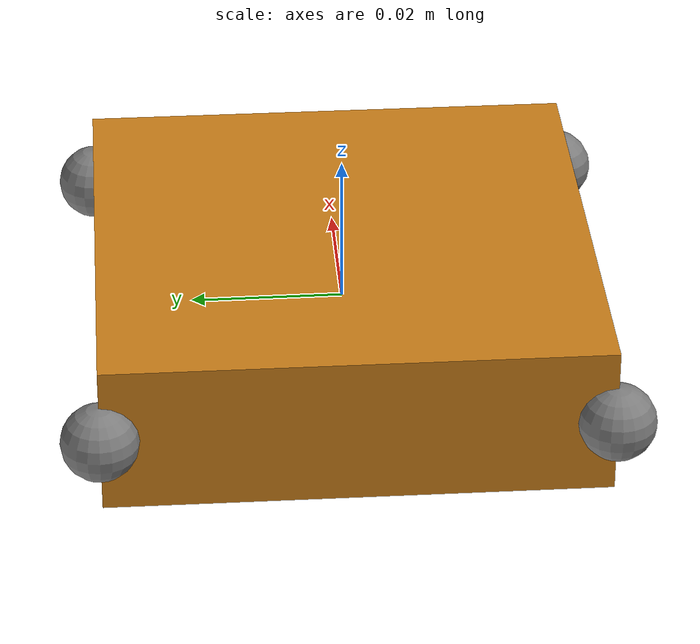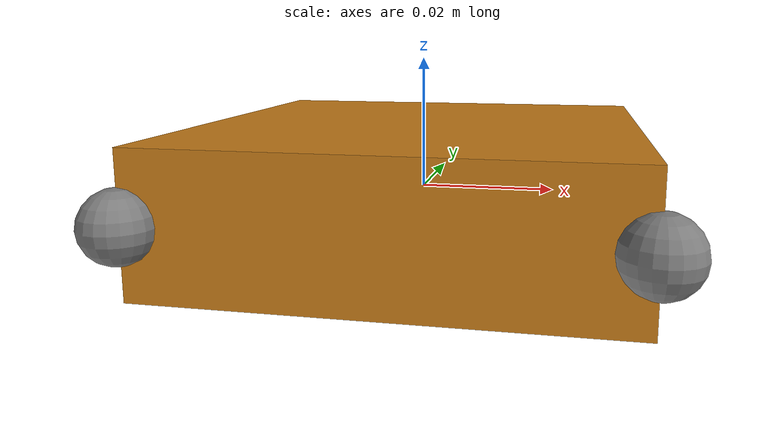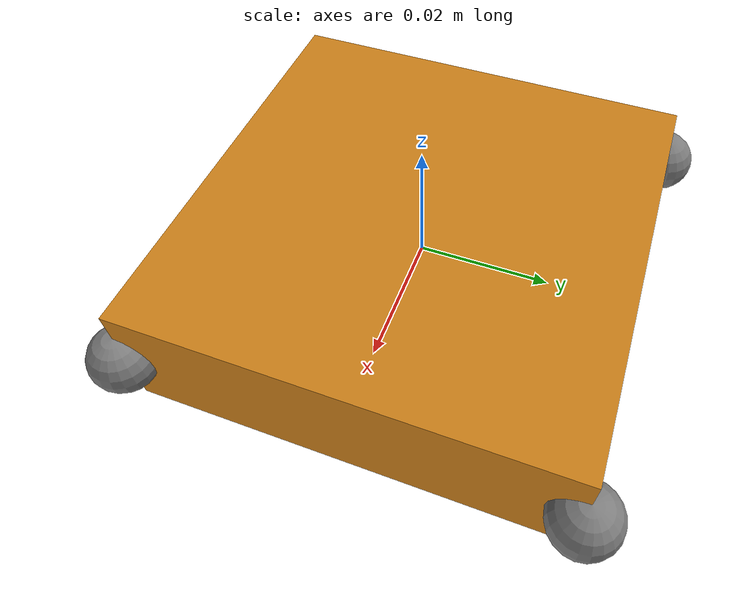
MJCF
<mujoco model="scarab">
  <compiler angle="radian" coordinate="local"/>
  <option gravity="0 0 -9.81" timestep="0.01" integrator="Euler" iterations="20" tolerance="1e-8"/>

  <default>
    <geom density="0"/>
  </default>

  <worldbody>
    <body name="base" pos="0 0 0">
      <freejoint/>
      <inertial pos="0 0 0" mass="0.5" diaginertia="0.001 0.001 0.002"/>
      <geom type="box" size="0.0325 0.0325 0.01" rgba="0.8 0.5 0.1 1"/>
      <!-- X-config rotor positions, arm_length 0.0325 m -->
      <site name="rotor1" pos="0.0325 0.0325 0"/>
      <site name="rotor2" pos="-0.0325 0.0325 0"/>
      <site name="rotor3" pos="-0.0325 -0.0325 0"/>
      <site name="rotor4" pos="0.0325 -0.0325 0"/>
    </body>
  </worldbody>

  <actuator>
    <!-- per-motor max thrust = thrust_coeff * mass * g = 1.0 * 0.5 * 9.81 = 4.905 N -->
    <general name="thr1" site="rotor1" gear="0 0 1 0 0 0" ctrllimited="true" ctrlrange="0 4.905"/>
    <general name="thr2" site="rotor2" gear="0 0 1 0 0 0" ctrllimited="true" ctrlrange="0 4.905"/>
    <general name="thr3" site="rotor3" gear="0 0 1 0 0 0" ctrllimited="true" ctrlrange="0 4.905"/>
    <general name="thr4" site="rotor4" gear="0 0 1 0 0 0" ctrllimited="true" ctrlrange="0 4.905"/>
  </actuator>
</mujoco>
